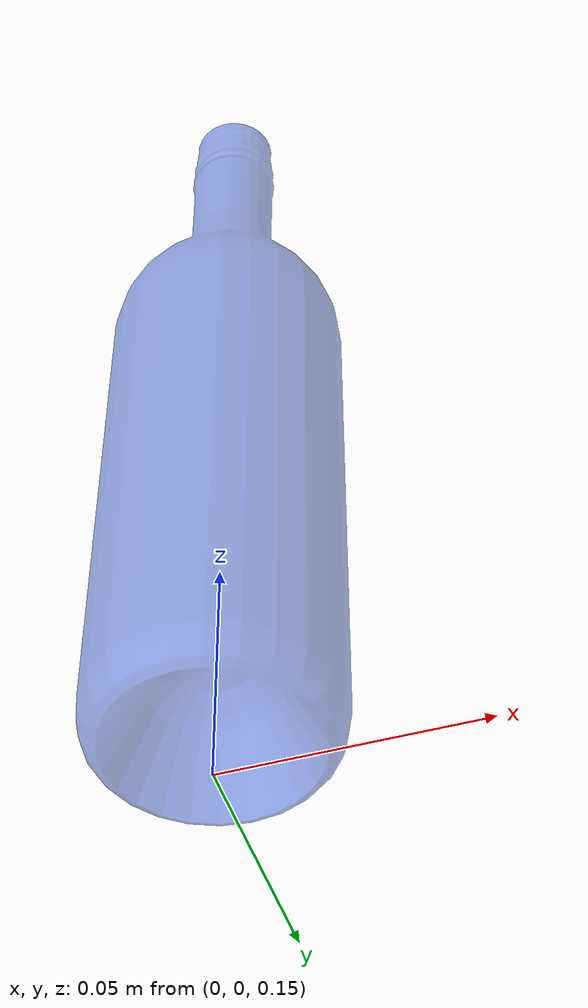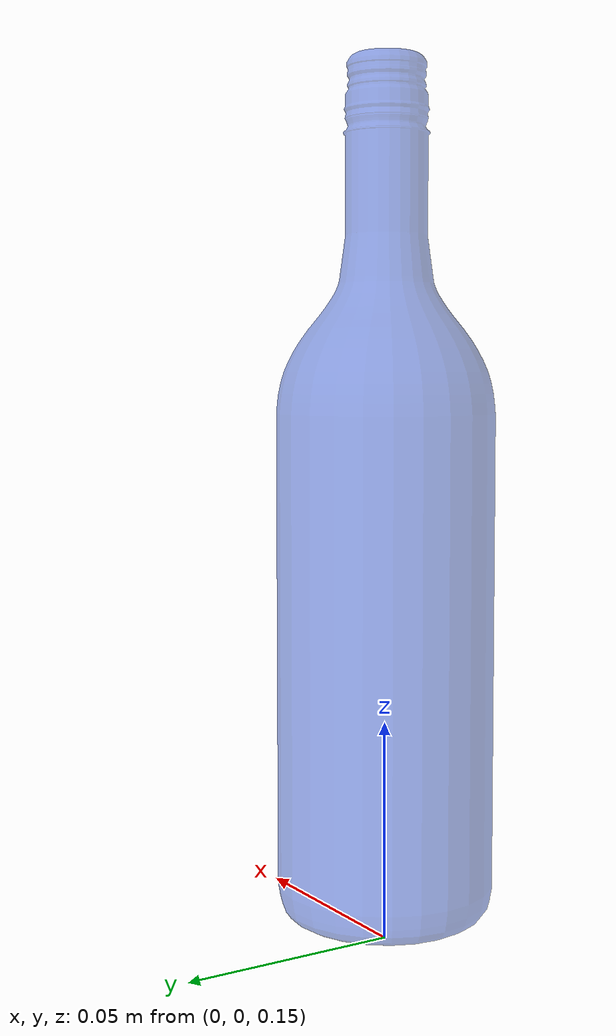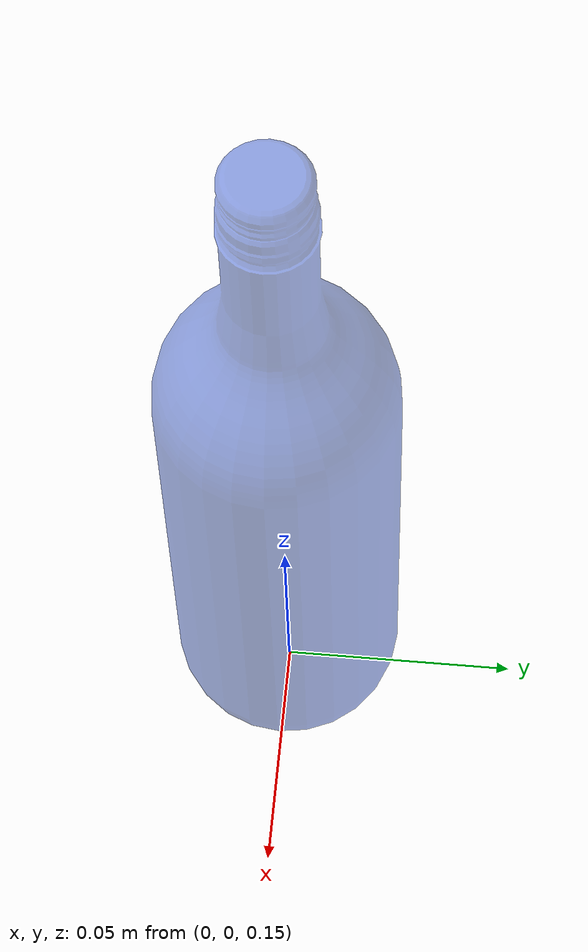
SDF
<?xml version='1.0'?>
<sdf version="1.4">
  <model name="bottle2">
    <pose>0 0 0 0 0 0</pose>

    <link name="link">
      <inertial>
        <mass>0.04</mass>
        <inertia> <!-- inertias are computed considering the bottle as an hollow cylinder -->
          <ixx>0.000173</ixx>
          <ixy>0.0</ixy>
          <ixz>0.0</ixz>
          <iyy>0.000173</iyy>
          <iyz>0.0</iyz>
          <izz>3.7e-05</izz>
        </inertia>
      </inertial>
      <collision name="collision">
        <pose>0 0 0.15 0 0 0</pose>
        <geometry>
          <mesh>
            <uri>file://bottle2/meshes/model.dae</uri>
            <scale>0.0254 0.0254 0.0254</scale>
          </mesh>
        </geometry>

        <surface>
          <contact>
            <!-- typical acrylic plastic material properties -->
            <poissons_ratio>0.35</poissons_ratio>
            <elastic_modulus>3.102640776e+09</elastic_modulus>
            <ode>
              <kp>100000</kp>
              <kd>100</kd>
              <max_vel>100.0</max_vel>
              <min_depth>0.001</min_depth>
            </ode>
          </contact>
          <friction>
            <torsional>
              <coefficient>1.0</coefficient>
              <use_patch_radius>0</use_patch_radius>
              <surface_radius>0.01</surface_radius>
            </torsional>
          </friction>
        </surface>
      </collision>

      <visual name="visual">
        <pose>0 0 0.15 0 0 0</pose>
        <geometry>
          <mesh>
            <uri>file://bottle2/meshes/model.dae</uri>
            <scale>0.0254 0.0254 0.0254</scale>
          </mesh>
        </geometry>
        <material>
          <script>
            <uri>file://media/materials/scripts/gazebo.material</uri>
            <name>Gazebo/BlueTransparent</name>
          </script>
        </material>
      </visual>

    </link>
  </model>
</sdf>
